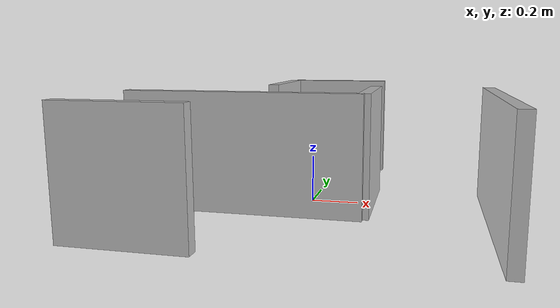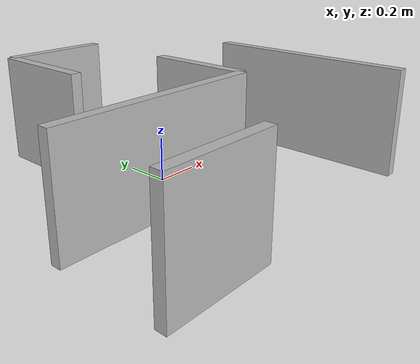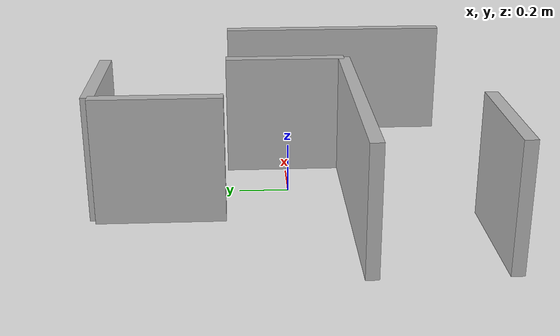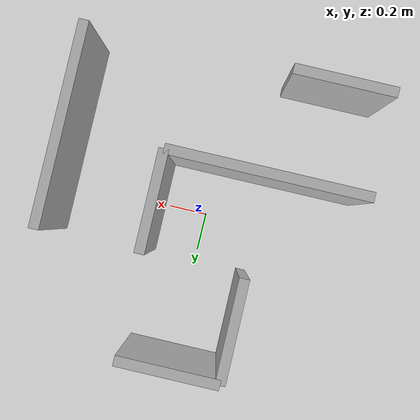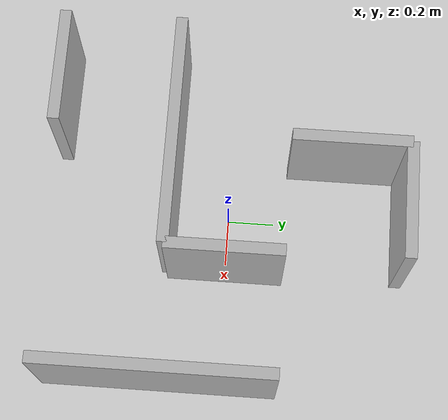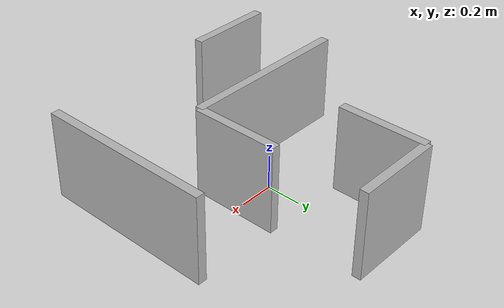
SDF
<?xml version="1.0" ?>
<sdf version="1.8">
  <model name="pattern1">
    <static>true</static>

    <link name="wall_1">
      <pose>-0.25 -0.25 0.25 0 0 0</pose>   <!-- x y z roll pitch yaw -->
      <collision name="col">
        <geometry><box><size>1.0 0.05 0.5</size></box></geometry>
      </collision>
      <visual name="vis">
        <geometry><box><size>1.0 0.05 0.5</size></box></geometry>
      </visual>
    </link>

    <link name="wall_2">
      <pose>-0.5 -0.75 0.25 0 0 0</pose>   <!-- x y z roll pitch yaw -->
      <collision name="col">
        <geometry><box><size>0.5 0.05 0.5</size></box></geometry>
      </collision>
      <visual name="vis">
        <geometry><box><size>0.5 0.05 0.5</size></box></geometry>
      </visual>
    </link>

    <link name="wall_3">
      <pose>0.0 0.75 0.25 0 0 0</pose>   <!-- x y z roll pitch yaw -->
      <collision name="col">
        <geometry><box><size>0.5 0.05 0.5</size></box></geometry>
      </collision>
      <visual name="vis">
        <geometry><box><size>0.5 0.05 0.5</size></box></geometry>
      </visual>
    </link>

    <link name="wall_4">
      <pose>-0.25 0.5 0.25 0 0 1.5708</pose>
      <collision name="col">
        <geometry><box><size>0.5 0.05 0.5</size></box></geometry>
      </collision>
      <visual name="vis">
        <geometry><box><size>0.5 0.05 0.5</size></box></geometry>
      </visual>
    </link>

    <link name="wall_5">
      <pose>0.25 0.0 0.25 0 0 1.5708</pose>
      <collision name="col">
        <geometry><box><size>0.5 0.05 0.5</size></box></geometry>
      </collision>
      <visual name="vis">
        <geometry><box><size>0.5 0.05 0.5</size></box></geometry>
      </visual>

    </link>
    <link name="wall_6">
      <pose>0.75 -0.25 0.25 0 0 1.5708</pose>
      <collision name="col">
        <geometry><box><size>1.0 0.05 0.5</size></box></geometry>
      </collision>
      <visual name="vis">
        <geometry><box><size>1.0 0.05 0.5</size></box></geometry>
      </visual>
    </link>

  </model>
</sdf>
